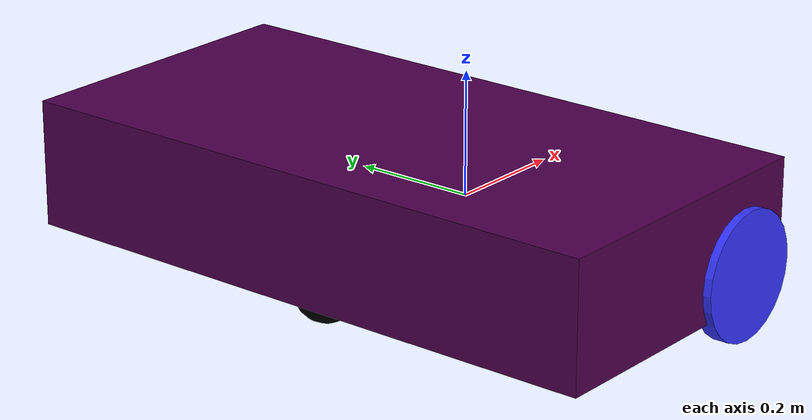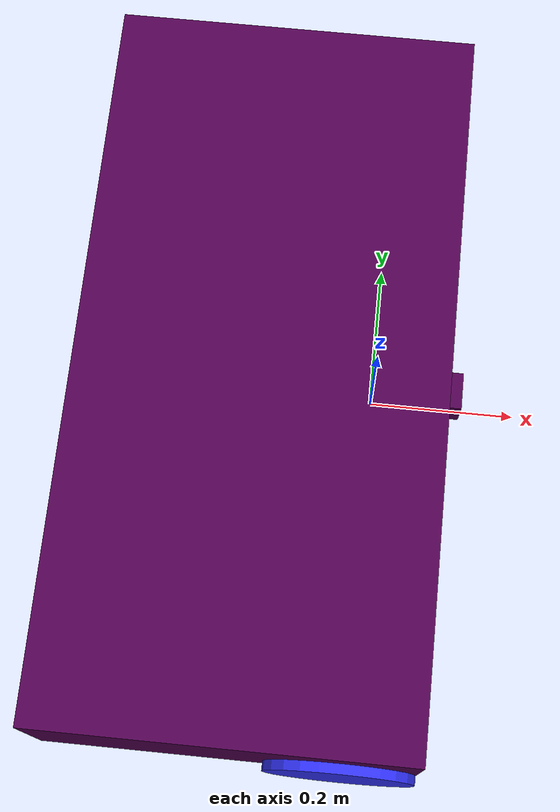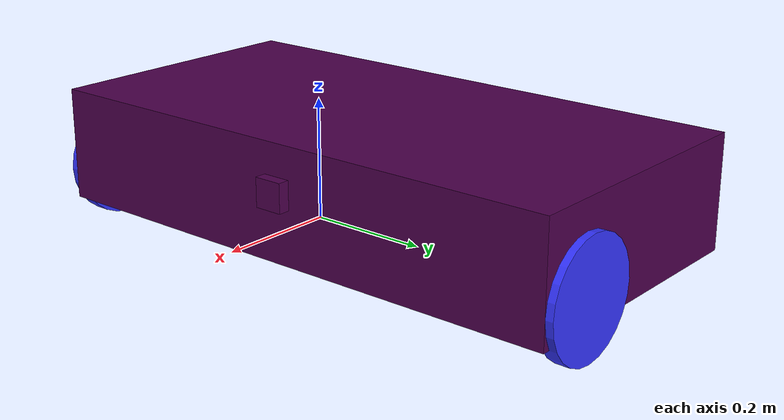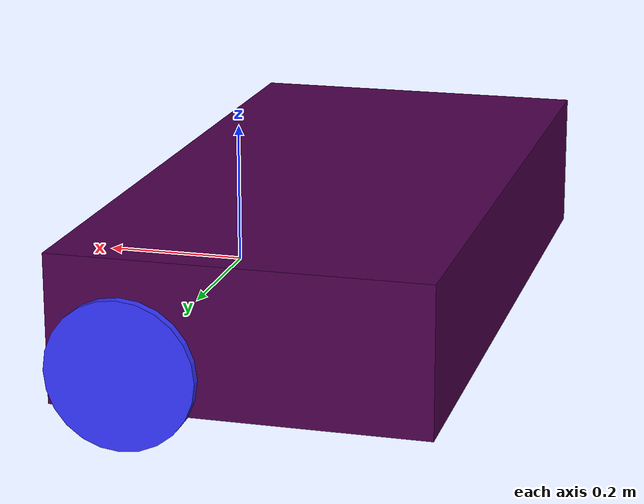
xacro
<?xml version="1.0" ?>
<robot name='robot' xmlns:xacro="http://ros.org/wiki/xacro">

    <xacro:property name="M_PI" value="3.1415926535897931" />

    <xacro:property name="chassis_length" value="0.5"/>
    <xacro:property name="chassis_width" value="1"/>
    <xacro:property name="chassis_height" value="0.2"/>

    <xacro:property name="wheel_radius" value="0.1"/>
    <xacro:property name="wheel_thickness" value="0.026"/>
    <xacro:property name="wheel_mass" value="0.05"/>
    <xacro:property name="wheel_offset_x" value="0.4"/>
    <xacro:property name="wheel_offset_y" value="${chassis_width/2}"/>
    <xacro:property name="wheel_offset_z" value="0.05"/>

    <xacro:property name="caster_wheel_radius" value="0.05"/>
    <xacro:property name="caster_wheel_mass" value="0.01"/>
    <xacro:property name="caster_wheel_offset_x" value="0.075"/>
    <xacro:property name="caster_wheel_offset_z" value="${wheel_offset_z - caster_wheel_radius}"/>
    <xacro:property name="mass" value="1.0"/>

    <material name="white">
        <color rgba="1 1 1 1" />
    </material>

    <material name="orange">
        <color rgba="0.3 0 0.3 1"/>
    </material>

    <material name="blue">
        <color rgba="0.2 0.2 1 1"/>
    </material>

    <material name="black">
        <color rgba="0 0 0 1"/>
    </material>

    <link name="base_link">
    </link>

    <link name="base_footprint">
    </link>

    <joint name="base_footprint_joint" type="fixed">
        <parent link="base_link"/>
        <child link="base_footprint"/>
        <origin xyz="0 0 -0.138" rpy="0 0 0"/>
    </joint>

    <joint name="chassis_joint" type="fixed">
        <parent link="base_link"/>
        <child link="chassis"/>
        <origin xyz="${-wheel_offset_x} 0 ${-wheel_offset_z}"/>
    </joint>

    <link name='chassis'>

        <inertial>
            <origin xyz="${chassis_length/2} 0 ${chassis_height/2}" rpy="0 0 0"/>
            <mass value="${mass}" />
            <inertia ixx="${(1/12) * mass * (chassis_width*chassis_width+chassis_height*chassis_height)}" ixy="0.0" ixz="0.0"
                    iyy="${(1/12) * mass * (chassis_length*chassis_length+chassis_height*chassis_height)}" iyz="0.0"
                    izz="${(1/12) * mass * (chassis_length*chassis_length+chassis_width*chassis_width)}" />
        </inertial>
        <visual>
            <origin xyz="${chassis_length/2} 0 ${chassis_height/2}"/>
            <geometry>
                <box size="${chassis_length} ${chassis_width} ${chassis_height}"/>
            </geometry>
            <material name="orange"/>
        </visual>
        <collision>
            <origin xyz="${chassis_length/2} 0 ${chassis_height/2}"/>
            <geometry>
                <box size="${chassis_length} ${chassis_width} ${chassis_height}"/>
            </geometry>
        </collision>
    </link>

    <gazebo reference="chassis">
        <material>Gazebo/Orange</material>
    </gazebo>

    <joint name="left_wheel_joint" type="continuous">
        <parent link="base_link"/>
        <child link="left_wheel"/>
        <origin xyz="0 ${wheel_offset_y} 0" rpy="-${pi/2} 0 0" />
        <axis xyz="0 0 1"/>
    </joint>

    <link name="left_wheel">
        <visual>
            <geometry>
                <cylinder radius="${wheel_radius}" length="${wheel_thickness}"/>
            </geometry>
            <material name="blue"/>
        </visual>
        <collision>
            <geometry>
                <cylinder radius="${wheel_radius}" length="${wheel_thickness}"/>
            </geometry>
        </collision>
        <inertial>
            <origin xyz="0 0 0" rpy="0 0 0"/>
            <mass value="${wheel_mass}" />
            <inertia ixx="${(1/12) * wheel_mass * (3*wheel_radius*wheel_radius + wheel_thickness*wheel_thickness)}" ixy="0.0" ixz="0.0"
                     iyy="${(1/12) * wheel_mass * (3*wheel_radius*wheel_radius + wheel_thickness*wheel_thickness)}" iyz="0.0"
                     izz="${(1/2) * wheel_mass * (wheel_radius*wheel_radius)}" />
        </inertial>
    </link>

    <gazebo reference="left_wheel">
        <material>Gazebo/Blue</material>
    </gazebo>

    <joint name="right_wheel_joint" type="continuous">
        <parent link="base_link"/>
        <child link="right_wheel"/>
        <origin xyz="0 ${-wheel_offset_y} 0" rpy="${pi/2} 0 0" />
        <axis xyz="0 0 -1"/>
    </joint>

    <link name="right_wheel">
        <visual>
            <geometry>
                <cylinder radius="${wheel_radius}" length="${wheel_thickness}"/>
            </geometry>
            <material name="blue"/>
        </visual>
        <collision>
            <geometry>
                <cylinder radius="${wheel_radius}" length="${wheel_thickness}"/>
            </geometry>
        </collision>
        <inertial>
            <origin xyz="0 0 0" rpy="0 0 0"/>
            <mass value="${wheel_mass}" />
            <inertia ixx="${(1/12) * wheel_mass * (3*wheel_radius*wheel_radius + wheel_thickness*wheel_thickness)}" ixy="0.0" ixz="0.0"
                     iyy="${(1/12) * wheel_mass * (3*wheel_radius*wheel_radius + wheel_thickness*wheel_thickness)}" iyz="0.0"
                     izz="${(1/2) * wheel_mass * (wheel_radius*wheel_radius)}" />
        </inertial>
    </link>

    <gazebo reference="right_wheel">
        <material>Gazebo/Blue</material>
    </gazebo>

    <joint name="caster_wheel_joint" type="fixed">
        <parent link="chassis"/>
        <child link="caster_wheel"/>
        <origin xyz="${caster_wheel_offset_x} 0 ${caster_wheel_offset_z}"/>
    </joint>

    <link name="caster_wheel">
        <visual>
            <geometry>
                <sphere radius="${caster_wheel_radius}"/>
            </geometry>
            <material name="black"/>
        </visual>
        <collision>
            <geometry>
                <sphere radius="${caster_wheel_radius}"/>
            </geometry>
        </collision>
        <inertial>
            <origin xyz="0 0 0" rpy="0 0 0"/>
            <mass value="${caster_wheel_mass}" />
            <inertia ixx="${(2/5) * caster_wheel_mass * (caster_wheel_radius*caster_wheel_radius)}" ixy="0.0" ixz="0.0"
                     iyy="${(2/5) * caster_wheel_mass * (caster_wheel_radius*caster_wheel_radius)}" iyz="0.0"
                     izz="${(2/5) * caster_wheel_mass * (caster_wheel_radius*caster_wheel_radius)}" />
        </inertial>
    </link>

    <gazebo reference="caster_wheel">
        <material>Gazebo/Black</material>
        <mu1 value="0.001"/>
        <mu2 value="0.001"/>
    </gazebo>

    <gazebo>

        <plugin
            filename="gz-sim-joint-state-publisher-system"
            name="gz::sim::systems::JointStatePublisher">
        </plugin>

        <plugin
            filename="gz-sim-diff-drive-system"
            name="gz::sim::systems::DiffDrive">
            <left_joint>left_wheel_joint</left_joint>
            <right_joint>right_wheel_joint</right_joint>
            <child_frame_id>robot/base_link</child_frame_id>
            <wheel_separation>0.291</wheel_separation>
            <wheel_radius>${wheel_radius}</wheel_radius>
            <odom_publish_frequency>10</odom_publish_frequency>
        </plugin>

		<plugin filename="gz-sim-sensors-system"
                    name="gz::sim::systems::Sensors">
                <render_engine>ogre2</render_engine>
        </plugin>

		<plugin filename="gz-sim-imu-system"
            name="gz::sim::systems::Imu">
        </plugin>

        	<plugin filename="libignition-gazebo-imu-system.so"
            name="ignition::gazebo::systems::Imu">
        </plugin>
    </gazebo>

    <joint name="imu_sensor_joint" type="fixed">
        <origin xyz="0.11 0.0 0.07" rpy="0 0 0"/>
        <parent link="base_link"/>
        <child link="imu_sensor_link"/>
    </joint>

    <link name="imu_sensor_link">
        <inertial>
        <origin xyz="0 0 0" rpy="0 0 0"/>
        <mass value="0.02" />
        <inertia ixx="${(1/12) * 0.01 * (0.2*0.2+0.5*0.5)}" ixy="0.0" ixz="0.0"
                 iyy="${(1/12) * 0.01 * (0.2*0.2+0.5*0.5)}" iyz="0.0"
                 izz="${(1/12) * 0.01 * (0.2*0.2+0.5*0.5)}" />
    </inertial>
    <visual>
        <origin xyz="0 0 0"/>
        <geometry>
            <box size="0.02 0.05 0.05"/>
        </geometry>
        <material name="orange"/>
    </visual>
    <collision>
        <origin xyz="0 0 0"/>
        <geometry>
            <box size="0.02 0.05 0.05"/>
        </geometry>
    </collision>
    </link>

    <gazebo reference="imu_sensor_link">
        <gravity>true</gravity>
        <sensor name='imu_sensor' type='imu'>
            <gz_frame_id>robot/imu_sensor_link</gz_frame_id>
            <always_on>true</always_on>
            <update_rate>10</update_rate>
            <visualize>true</visualize>
            <topic>imu</topic>
            <pose>0 0 0 0 0 0</pose>
        </sensor>
    </gazebo>

</robot>
